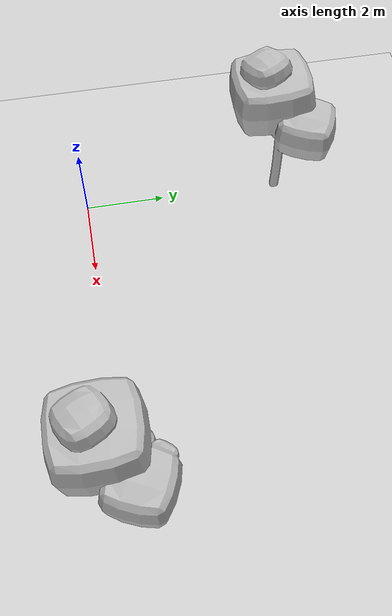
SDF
<?xml version="1.0" ?>
<sdf version="1.4">
  <world name="default">
    <gui fullscreen='0'>
      <camera name='user_camera'>
        <pose frame=''>-0.23904 -19.0487 0.901345 -0 0.071456 1.52819</pose>
        <view_controller>orbit</view_controller>
        <projection_type>perspective</projection_type>
      </camera>
    </gui>

    <physics type="ode">
      <gravity>0 0 -9.81</gravity>
      <ode>
        <solver>
          <type>world</type>
          <iters>500</iters>
          <sor>1.0</sor>
        </solver>
        <constraints>
          <cfm>0.0</cfm>
          <erp>0.2</erp>
          <contact_max_correcting_vel>0.1</contact_max_correcting_vel>
          <contact_surface_layer>0.0</contact_surface_layer>
        </constraints>
      </ode>
      <real_time_update_rate>1000</real_time_update_rate>
      <max_step_size>0.001</max_step_size>
    </physics>

    <include>
      <uri>model://ground_plane</uri>
      <pose>0 0 0 0 0 0</pose>
    </include>

    <include>
      <uri>model://tree</uri>
      <name>tree1</name>
      <pose>8.0 0 0.0 0 0 0</pose>
    </include>

    <include>
      <uri>model://tree</uri>
      <name>tree2</name>
      <pose>0 5.0 0.0 0 0 0</pose>
    </include>

    <!-- A global light source -->
    <include>
      <uri>model://sun</uri>
    </include>

    <light name='user_point_light_0' type='point'>
      <pose frame=''>7.1 0.0 3.0 0 0 0</pose>
      <diffuse>0.2 0.2 0.2 1</diffuse>
      <specular>0.1 0.1 0.1 1</specular>
      <attenuation>
        <range>10</range>
        <constant>0.5</constant>
        <linear>0.01</linear>
        <quadratic>0.001</quadratic>
      </attenuation>
      <cast_shadows>0</cast_shadows>
      <direction>0 0 -1</direction>
    </light>

    <light name='user_point_light_1' type='point'>
      <pose frame=''>-7.1 0.0 3.0 0 0 0</pose>
      <diffuse>0.2 0.2 0.2 1</diffuse>
      <specular>0.1 0.1 0.1 1</specular>
      <attenuation>
        <range>10</range>
        <constant>0.5</constant>
        <linear>0.01</linear>
        <quadratic>0.001</quadratic>
      </attenuation>
      <cast_shadows>0</cast_shadows>
      <direction>0 0 -1</direction>
    </light>

    <light name='user_point_light_2' type='point'>
      <pose frame=''>7.1 -16.0 3.0 0 0 0</pose>
      <diffuse>0.2 0.2 0.2 1</diffuse>
      <specular>0.1 0.1 0.1 1</specular>
      <attenuation>
        <range>10</range>
        <constant>0.5</constant>
        <linear>0.01</linear>
        <quadratic>0.001</quadratic>
      </attenuation>
      <cast_shadows>0</cast_shadows>
      <direction>0 0 -1</direction>
    </light>

    <light name='user_point_light_3' type='point'>
      <pose frame=''>-7.1 -16.0 3.0 0 0 0</pose>
      <diffuse>0.2 0.2 0.2 1</diffuse>
      <specular>0.1 0.1 0.1 1</specular>
      <attenuation>
        <range>10.0</range>
        <constant>0.5</constant>
        <linear>0.01</linear>
        <quadratic>0.001</quadratic>
      </attenuation>
      <cast_shadows>0</cast_shadows>
      <direction>0 0 -1</direction>
    </light>

    <light name='user_point_light_4' type='point'>
      <pose frame=''>7.1 13.0 3.0 0 0 0</pose>
      <diffuse>0.2 0.2 0.2 1</diffuse>
      <specular>0.1 0.1 0.1 1</specular>
      <attenuation>
        <range>10.0</range>
        <constant>0.5</constant>
        <linear>0.01</linear>
        <quadratic>0.001</quadratic>
      </attenuation>
      <cast_shadows>0</cast_shadows>
      <direction>0 0 -1</direction>
    </light>

    <light name='user_point_light_5' type='point'>
      <pose frame=''>-7.1 13.0 3.0 0 0 0</pose>
      <diffuse>0.2 0.2 0.2 1</diffuse>
      <specular>0.1 0.1 0.1 1</specular>
      <attenuation>
        <range>10</range>
        <constant>0.5</constant>
        <linear>0.01</linear>
        <quadratic>0.001</quadratic>
      </attenuation>
      <cast_shadows>0</cast_shadows>
      <direction>0 0 -1</direction>
    </light>

  </world>
</sdf>

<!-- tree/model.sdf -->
<sdf version='1.6'>
  <model name='tree'>
    <link name='link_1'>
         <visual name='visual'>
        <pose frame=''>0 0 0 0 -0 0</pose>
        <geometry>
          <mesh>
            <uri>model://tree/meshes/tree.dae</uri>
            <scale>1.0 1.0 1.0</scale>
          </mesh>
        </geometry>
        <cast_shadows>0</cast_shadows>
        <transparency>0</transparency>
      </visual>
      <collision name='collision'>
        <laser_retro>0</laser_retro>
        <max_contacts>10</max_contacts>
        <pose frame=''>0 0 0 0 -0 0</pose>
        <geometry>
          <mesh>
            <uri>model://tree/meshes/tree.stl</uri>
            <scale>1.0 1.0 1.0</scale>
          </mesh>
        </geometry>
     </collision>
    </link>

    <static>1</static>
    <allow_auto_disable>1</allow_auto_disable>
  </model>
</sdf>
